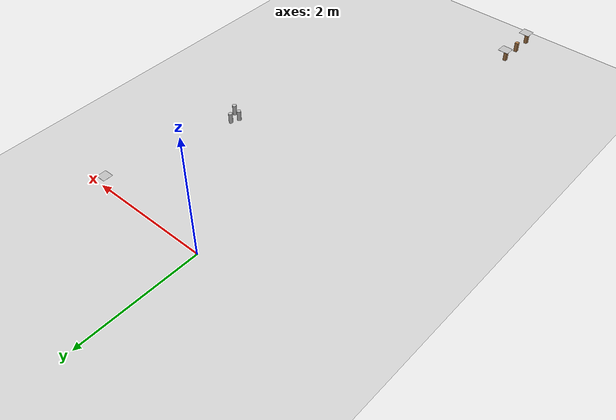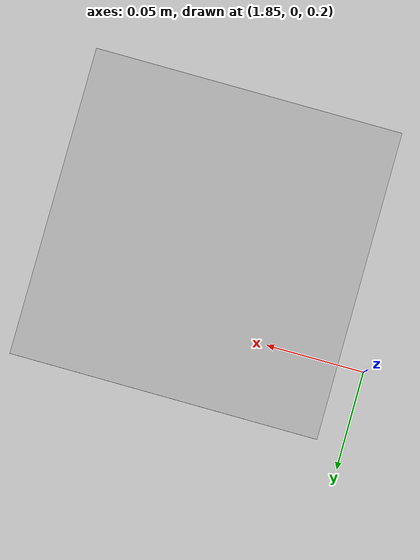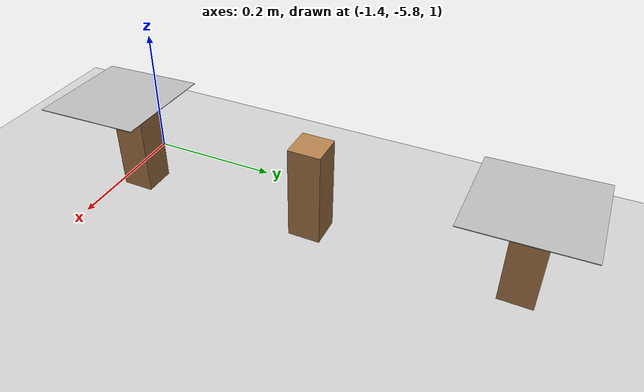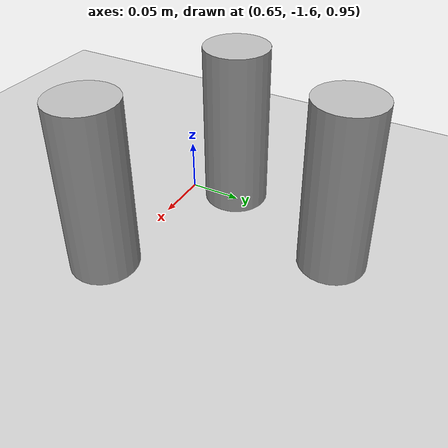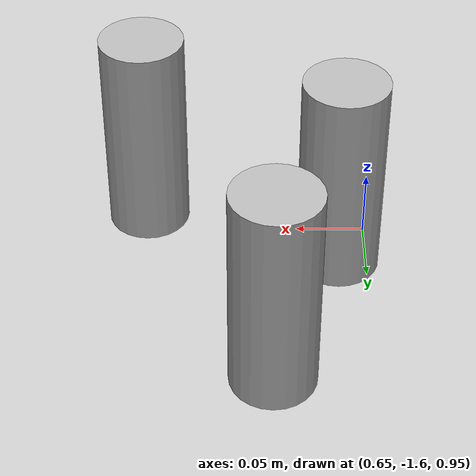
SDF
<sdf version="1.7">
 <world name="default">
  <plugin name="gazebo_ros_state" filename="libgazebo_ros_state.so">
   <ros><namespace>/gazebo</namespace></ros>
   <update_rate>1.0</update_rate>
  </plugin>
  <light name="sun" type="directional">
   <pose>0 0 10 0 -0 0</pose>
   <diffuse>0.8 0.8 0.8 1</diffuse>
   <specular>0.2 0.2 0.2 1</specular>
   <attenuation>
    <range>1000</range>
    <constant>0.9</constant>
    <linear>0.01</linear>
    <quadratic>0.001</quadratic>
   </attenuation>
   <direction>0 0.5 -0.9</direction>
   <spot><inner_angle>0</inner_angle><outer_angle>0</outer_angle><falloff>0</falloff></spot>
  </light>
  <light name="point_light" type="point">
   <pose>0 -0.377195 6.59868 0 -0 0</pose>
   <diffuse>0.784314 0.784314 0.784314 1</diffuse>
   <specular>0.0980392 0.0980392 0.0980392 1</specular>
   <attenuation>
    <range>50</range>
    <constant>0.8</constant>
    <linear>0</linear>
    <quadratic>0.001</quadratic>
   </attenuation>
   <cast_shadows>0</cast_shadows>
   <direction>0 0 -1</direction>
   <spot><inner_angle>0</inner_angle><outer_angle>0</outer_angle><falloff>0</falloff></spot>
  </light>
  <model name="ground_plane">
   <static>1</static>
   <link name="link">
    <collision name="collision">
     <geometry><plane><normal>0 0 1</normal><size>100 100</size></plane></geometry>
     <surface>
      <contact><collide_bitmask>65535</collide_bitmask></contact>
      <friction><ode><mu>100</mu><mu2>50</mu2></ode></friction>
     </surface>
    </collision>
    <visual name="visual">
     <cast_shadows>0</cast_shadows>
     <geometry><plane><normal>0 0 1</normal><size>100 100</size></plane></geometry>
     <material>
      <script><uri>file://media/materials/scripts/gazebo.material</uri><name>Gazebo/Grey</name></script>
     </material>
    </visual>
   </link>
  </model>
  <gravity>0 0 -9.8</gravity>
  <magnetic_field>6e-06 2.3e-05 -4.2e-05</magnetic_field>
  <atmosphere type="adiabatic"/>
  <physics type="ode">
   <max_step_size>0.001</max_step_size>
   <real_time_factor>1</real_time_factor>
   <real_time_update_rate>1000</real_time_update_rate>
  </physics>
  <scene><ambient>0.4 0.4 0.4 1</ambient><background>0.7 0.7 0.7 1</background><shadows>1</shadows></scene>
  <audio><device>default</device></audio>
  <spherical_coordinates>
   <surface_model>EARTH_WGS84</surface_model>
   <latitude_deg>0</latitude_deg>
   <longitude_deg>0</longitude_deg>
   <elevation>0</elevation>
   <heading_deg>0</heading_deg>
  </spherical_coordinates>
  <model name="biscuits_pack">
   <static>0</static>
   <link name="link">
    <inertial>
     <mass>0.25</mass>
     <inertia><ixx>0</ixx><ixy>0</ixy><ixz>0</ixz><iyy>0</iyy><iyz>0</iyz><izz>0</izz></inertia>
    </inertial>
    <collision name="collision">
     <geometry><cylinder><radius>0.029</radius><length>0.15</length></cylinder></geometry>
    </collision>
    <visual name="visual">
     <geometry><cylinder><radius>0.029</radius><length>0.15</length></cylinder></geometry>
     <material>
      <script>
       <uri>model://biscuits_pack/material/scripts</uri>
       <uri>model://biscuits_pack/material/textures</uri>
       <name>Custom/biscuits_pack</name>
      </script>
     </material>
    </visual>
    <velocity_decay><linear>0</linear><angular>0</angular></velocity_decay>
   </link>
   <pose>0.809194 -1.58808 1.05 -0.000203 0.000104 0.000275</pose>
  </model>
  <model name="biscuits_pack_0">
   <static>0</static>
   <link name="link">
    <inertial>
     <mass>0.25</mass>
     <inertia><ixx>0</ixx><ixy>0</ixy><ixz>0</ixz><iyy>0</iyy><iyz>0</iyz><izz>0</izz></inertia>
    </inertial>
    <collision name="collision">
     <geometry><cylinder><radius>0.029</radius><length>0.15</length></cylinder></geometry>
    </collision>
    <visual name="visual">
     <geometry><cylinder><radius>0.029</radius><length>0.15</length></cylinder></geometry>
     <material>
      <script>
       <uri>model://biscuits_pack/material/scripts</uri>
       <uri>model://biscuits_pack/material/textures</uri>
       <name>Custom/biscuits_pack</name>
      </script>
     </material>
    </visual>
    <velocity_decay><linear>0</linear><angular>0</angular></velocity_decay>
   </link>
   <pose>0.719945 -1.42335 1.05001 0.000332 9.7e-05 -0.000357</pose>
  </model>
  <model name="biscuits_pack_1">
   <static>0</static>
   <link name="link">
    <inertial>
     <mass>0.25</mass>
     <inertia><ixx>0</ixx><ixy>0</ixy><ixz>0</ixz><iyy>0</iyy><iyz>0</iyz><izz>0</izz></inertia>
    </inertial>
    <collision name="collision">
     <geometry><cylinder><radius>0.029</radius><length>0.15</length></cylinder></geometry>
    </collision>
    <visual name="visual">
     <geometry><cylinder><radius>0.029</radius><length>0.15</length></cylinder></geometry>
     <material>
      <script>
       <uri>model://biscuits_pack/material/scripts</uri>
       <uri>model://biscuits_pack/material/textures</uri>
       <name>Custom/biscuits_pack</name>
      </script>
     </material>
    </visual>
    <velocity_decay><linear>0</linear><angular>0</angular></velocity_decay>
   </link>
   <pose>0.673556 -1.53786 1.05001 -0.000467 -1.6e-05 -0.000284</pose>
  </model>
  <model name="aruco_marker_250_6x6_1">
   <static>0</static>
   <link name="marker">
    <inertial>
     <mass>1e-05</mass>
     <inertia><ixx>0</ixx><ixy>0</ixy><ixz>0</ixz><iyy>0</iyy><iyz>0</iyz><izz>0</izz></inertia>
    </inertial>
    <visual name="visual">
     <pose>0 0 0 0 -0 1.57</pose>
     <geometry><box><size>0.16 0.16 0.001</size></box></geometry>
     <material>
      <script>
       <uri>model://aruco_marker_250_6x6_1/material/scripts</uri>
       <uri>model://aruco_marker_250_6x6_1/material/textures</uri>
       <name>Aruco/aruco_marker_250_6x6_1</name>
      </script>
     </material>
    </visual>
    <collision name="collision"><geometry><box><size>0.16 0.16 0.001</size></box></geometry></collision>
    <self_collide>1</self_collide>
   </link>
   <pose>-1.30837 -5.18344 1.14272 0.024792 -0.024428 0.000433</pose>
  </model>
  <model name="aruco_marker_250_6x6_3">
   <static>0</static>
   <link name="marker">
    <inertial>
     <mass>1e-05</mass>
     <inertia><ixx>0</ixx><ixy>0</ixy><ixz>0</ixz><iyy>0</iyy><iyz>0</iyz><izz>0</izz></inertia>
    </inertial>
    <visual name="visual">
     <pose>0 0 0 0 -0 1.57</pose>
     <geometry><box><size>0.16 0.16 0.001</size></box></geometry>
     <material>
      <script>
       <uri>model://aruco_marker_250_6x6_3/material/scripts</uri>
       <uri>model://aruco_marker_250_6x6_3/material/textures</uri>
       <name>Aruco/aruco_marker_250_6x6_3</name>
      </script>
     </material>
    </visual>
    <collision name="collision"><geometry><box><size>0.16 0.16 0.001</size></box></geometry></collision>
    <self_collide>1</self_collide>
   </link>
   <pose>-1.30745 -5.79359 1.14272 0.030842 -0.020669 0.001419</pose>
  </model>
  <model name="aruco_marker_250_6x6_4">
   <static>0</static>
   <link name="marker">
    <inertial>
     <mass>1e-05</mass>
     <inertia><ixx>0</ixx><ixy>0</ixy><ixz>0</ixz><iyy>0</iyy><iyz>0</iyz><izz>0</izz></inertia>
    </inertial>
    <visual name="visual">
     <pose>0 0 0 0 -0 1.57</pose>
     <geometry><box><size>0.16 0.16 0.001</size></box></geometry>
     <material>
      <script>
       <uri>model://aruco_marker_250_6x6_4/material/scripts</uri>
       <uri>model://aruco_marker_250_6x6_4/material/textures</uri>
       <name>Aruco/aruco_marker_250_6x6_4</name>
      </script>
     </material>
    </visual>
    <collision name="collision"><geometry><box><size>0.16 0.16 0.001</size></box></geometry></collision>
    <self_collide>1</self_collide>
   </link>
   <pose>1.94316 -0.041802 0.1903 0 1e-06 4.1e-05</pose>
  </model>
  <model name="wood_cube_5cm">
   <link name="link">
    <pose>0 0 0.025 0 -0 0</pose>
    <inertial>
     <mass>0.001</mass>
     <inertia>
      <ixx>2.35417e-05</ixx>
      <ixy>0</ixy>
      <ixz>0</ixz>
      <iyy>2.35417e-05</iyy>
      <iyz>0</iyz>
      <izz>2.35417e-05</izz>
     </inertia>
    </inertial>
    <collision name="collision">
     <geometry><box><size>0.05 0.05 0.15</size></box></geometry>
     <surface>
      <contact>
       <poissons_ratio>0.347</poissons_ratio>
       <elastic_modulus>8.8e+09</elastic_modulus>
       <ode><kp>100000</kp><kd>1</kd><max_vel>1</max_vel><min_depth>0.001</min_depth></ode>
      </contact>
      <friction>
       <torsional>
        <coefficient>1</coefficient>
        <use_patch_radius>0</use_patch_radius>
        <surface_radius>0.05</surface_radius>
       </torsional>
       <ode><mu>1</mu><mu2>1</mu2><slip1>0</slip1><slip2>0</slip2></ode>
      </friction>
     </surface>
    </collision>
    <visual name="visual">
     <geometry><box><size>0.05 0.05 0.15</size></box></geometry>
     <material>
      <script><uri>file://media/materials/scripts/gazebo.material</uri><name>Gazebo/Wood</name></script>
     </material>
    </visual>
    <collision name="collision_top">
     <pose>0 0 0.08 0 -0 0</pose>
     <geometry><box><size>0.07 0.07 0.02</size></box></geometry>
     <surface><friction><ode><mu>1</mu><mu2>1</mu2><slip1>0</slip1><slip2>0</slip2></ode></friction></surface>
    </collision>
   </link>
   <pose>-1.33291 -5.17921 1.025 0 0 -0.008958</pose>
  </model>
  <model name="wood_cube_5cm_0">
   <link name="link">
    <pose>0 0 0.025 0 -0 0</pose>
    <inertial>
     <mass>0.001</mass>
     <inertia>
      <ixx>2.35417e-05</ixx>
      <ixy>0</ixy>
      <ixz>0</ixz>
      <iyy>2.35417e-05</iyy>
      <iyz>0</iyz>
      <izz>2.35417e-05</izz>
     </inertia>
    </inertial>
    <collision name="collision">
     <geometry><box><size>0.05 0.05 0.15</size></box></geometry>
     <surface>
      <contact>
       <poissons_ratio>0.347</poissons_ratio>
       <elastic_modulus>8.8e+09</elastic_modulus>
       <ode><kp>100000</kp><kd>1</kd><max_vel>1</max_vel><min_depth>0.001</min_depth></ode>
      </contact>
      <friction>
       <torsional>
        <coefficient>1</coefficient>
        <use_patch_radius>0</use_patch_radius>
        <surface_radius>0.05</surface_radius>
       </torsional>
       <ode><mu>1</mu><mu2>1</mu2><slip1>0</slip1><slip2>0</slip2></ode>
      </friction>
     </surface>
    </collision>
    <visual name="visual">
     <geometry><box><size>0.05 0.05 0.15</size></box></geometry>
     <material>
      <script><uri>file://media/materials/scripts/gazebo.material</uri><name>Gazebo/Wood</name></script>
     </material>
    </visual>
    <collision name="collision_top">
     <pose>0 0 0.08 0 -0 0</pose>
     <geometry><box><size>0.07 0.07 0.02</size></box></geometry>
     <surface><friction><ode><mu>1</mu><mu2>1</mu2><slip1>0</slip1><slip2>0</slip2></ode></friction></surface>
    </collision>
   </link>
   <pose>-1.33293 -5.49022 1.025 0 0 -0.000618</pose>
  </model>
  <model name="wood_cube_5cm_1">
   <link name="link">
    <pose>0 0 0.025 0 -0 0</pose>
    <inertial>
     <mass>0.001</mass>
     <inertia>
      <ixx>2.35417e-05</ixx>
      <ixy>0</ixy>
      <ixz>0</ixz>
      <iyy>2.35417e-05</iyy>
      <iyz>0</iyz>
      <izz>2.35417e-05</izz>
     </inertia>
    </inertial>
    <collision name="collision">
     <geometry><box><size>0.05 0.05 0.15</size></box></geometry>
     <surface>
      <contact>
       <poissons_ratio>0.347</poissons_ratio>
       <elastic_modulus>8.8e+09</elastic_modulus>
       <ode><kp>100000</kp><kd>1</kd><max_vel>1</max_vel><min_depth>0.001</min_depth></ode>
      </contact>
      <friction>
       <torsional>
        <coefficient>1</coefficient>
        <use_patch_radius>0</use_patch_radius>
        <surface_radius>0.05</surface_radius>
       </torsional>
       <ode><mu>1</mu><mu2>1</mu2><slip1>0</slip1><slip2>0</slip2></ode>
      </friction>
     </surface>
    </collision>
    <visual name="visual">
     <geometry><box><size>0.05 0.05 0.15</size></box></geometry>
     <material>
      <script><uri>file://media/materials/scripts/gazebo.material</uri><name>Gazebo/Wood</name></script>
     </material>
    </visual>
    <collision name="collision_top">
     <pose>0 0 0.08 0 -0 0</pose>
     <geometry><box><size>0.07 0.07 0.02</size></box></geometry>
     <surface><friction><ode><mu>1</mu><mu2>1</mu2><slip1>0</slip1><slip2>0</slip2></ode></friction></surface>
    </collision>
   </link>
   <pose>-1.33291 -5.79012 1.025 0 0 -0.003922</pose>
  </model>
 </world>
</sdf>
